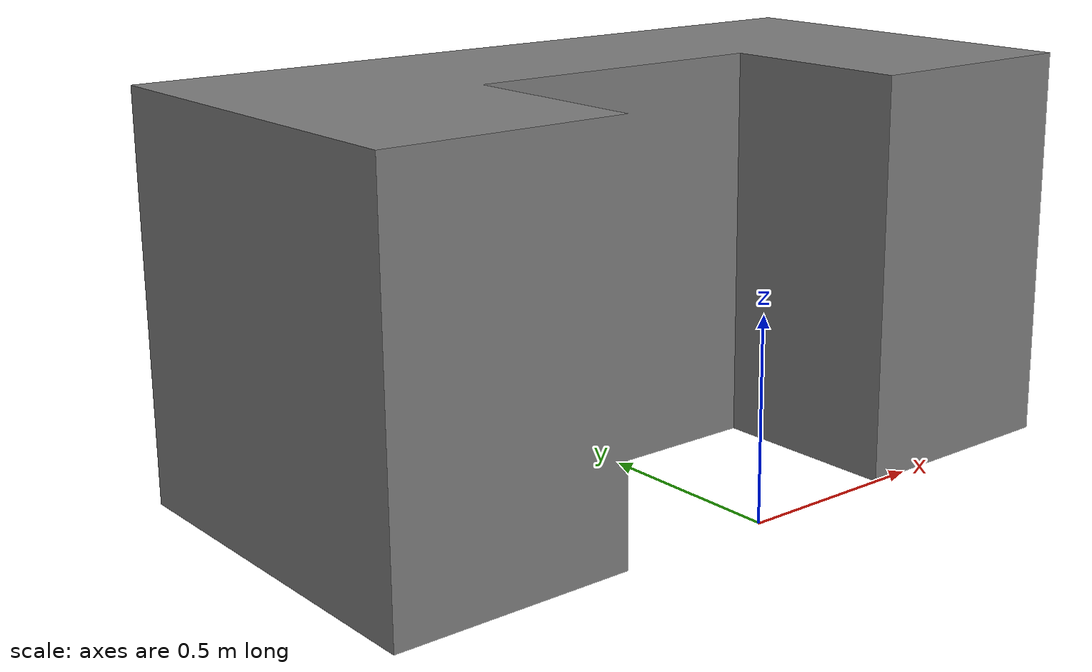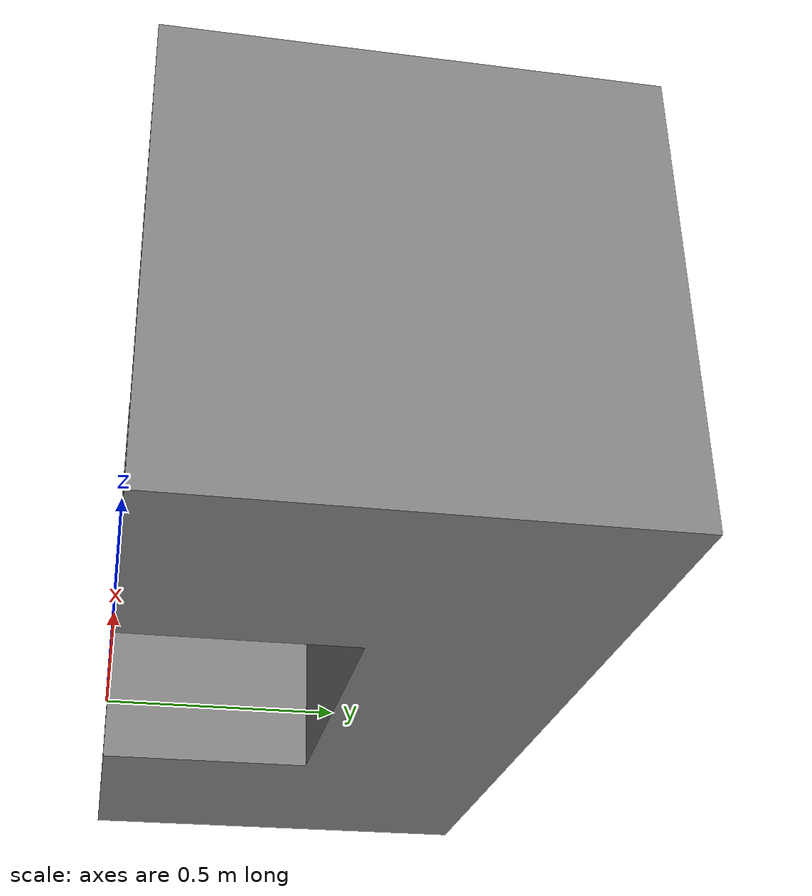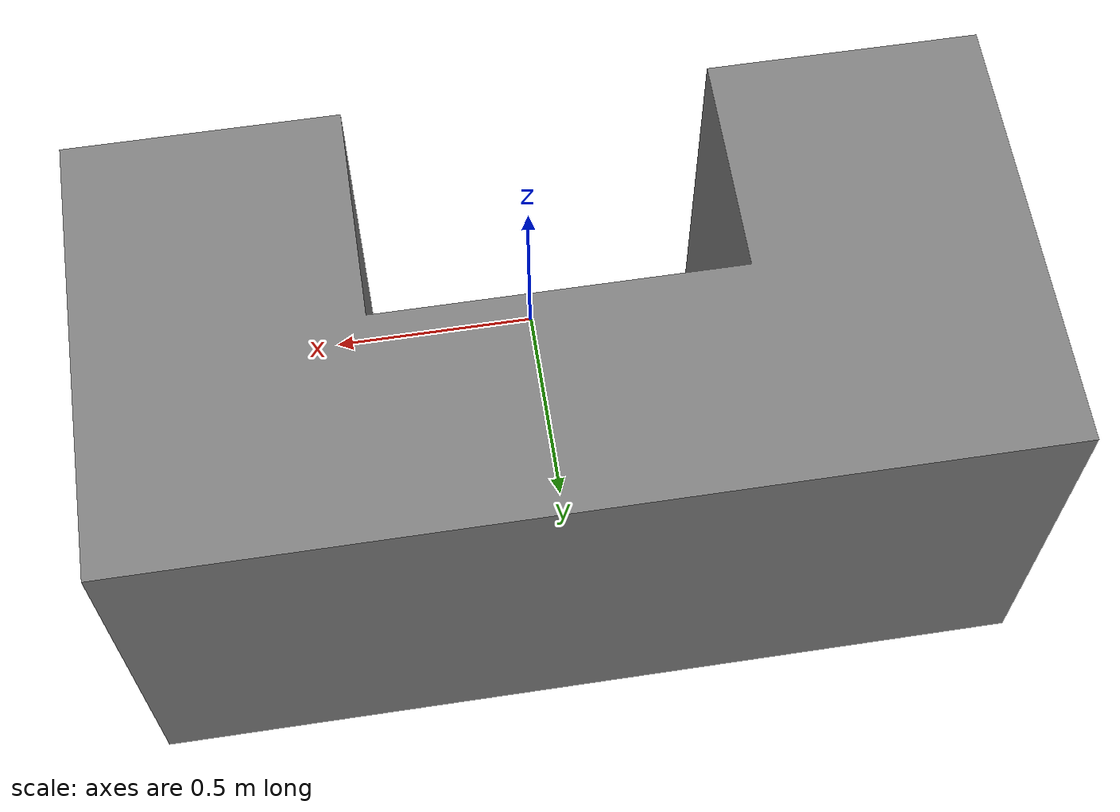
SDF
<?xml version='1.0'?>
<sdf version='1.6'>
  <model name='workbench'>
    <link name='body'>
      <pose frame=''>0 0 0 0 -0 0</pose>
      <inertial>
        <mass>1000</mass>
        <pose frame=''>0 0 0 0 -0 0</pose>
        <inertia>
          <ixx>166.666667</ixx>
          <ixy>0</ixy>
          <ixz>0</ixz>
          <iyy>416.666667</iyy>
          <iyz>0</iyz>
          <izz>416.666667</izz>
        </inertia>
      </inertial>
      <self_collide>0</self_collide>
      <kinematic>0</kinematic>
      <visual name='visual'>
        <geometry>
          <mesh>
            <uri>file:///home/jth/thesis_ws/src/mrk_robot_support/meshes/workbench/workbench.dae</uri>
            <scale>0.001 0.001 0.001</scale>
          </mesh>
        </geometry>
        <pose frame=''>0 0 0 0 -0 0</pose>
        <cast_shadows>1</cast_shadows>
        <transparency>0</transparency>
        <material>
          <ambient>0 0 0 1</ambient>
          <diffuse>0.5 0.5 0.5 1</diffuse>
          <specular>0 0 0 1</specular>
          <emissive>0 0 0 1</emissive>
          <shader type='vertex'>
            <normal_map>__default__</normal_map>
          </shader>
        </material>
      </visual>
      <collision name='collision'>
        <laser_retro>0</laser_retro>
        <max_contacts>10</max_contacts>
        <pose frame=''>0 0 0 0 -0 0</pose>
        <geometry>
          <mesh>
            <uri>file:///home/jth/thesis_ws/src/mrk_robot_support/meshes/workbench/workbench.dae</uri>
            <scale>0.001 0.001 0.001</scale>
          </mesh>
        </geometry>
        <surface>
          <friction>
            <ode>
              <mu>1</mu>
              <mu2>1</mu2>
              <fdir1>0 0 0</fdir1>
              <slip1>0</slip1>
              <slip2>0</slip2>
            </ode>
            <torsional>
              <coefficient>1</coefficient>
              <patch_radius>0</patch_radius>
              <surface_radius>0</surface_radius>
              <use_patch_radius>1</use_patch_radius>
              <ode>
                <slip>0</slip>
              </ode>
            </torsional>
          </friction>
          <bounce>
            <restitution_coefficient>0</restitution_coefficient>
            <threshold>1e+06</threshold>
          </bounce>
          <contact>
            <collide_without_contact>0</collide_without_contact>
            <collide_without_contact_bitmask>1</collide_without_contact_bitmask>
            <collide_bitmask>1</collide_bitmask>
            <ode>
              <soft_cfm>0</soft_cfm>
              <soft_erp>0.2</soft_erp>
              <kp>1e+13</kp>
              <kd>1</kd>
              <max_vel>0.01</max_vel>
              <min_depth>0</min_depth>
            </ode>
            <bullet>
              <split_impulse>1</split_impulse>
              <split_impulse_penetration_threshold>-0.01</split_impulse_penetration_threshold>
              <soft_cfm>0</soft_cfm>
              <soft_erp>0.2</soft_erp>
              <kp>1e+13</kp>
              <kd>1</kd>
            </bullet>
          </contact>
        </surface>
      </collision>
    </link>
    <static>1</static>
    <allow_auto_disable>1</allow_auto_disable>
  </model>
</sdf>
